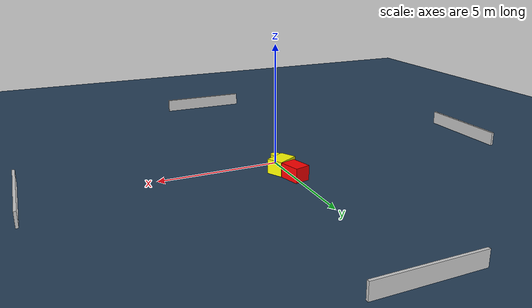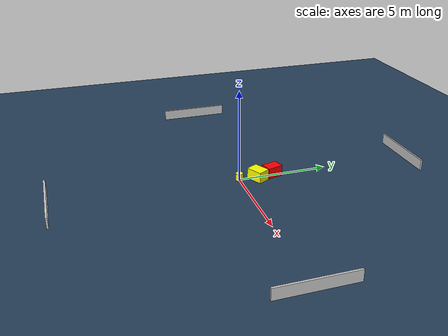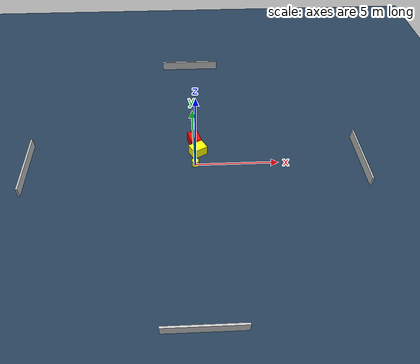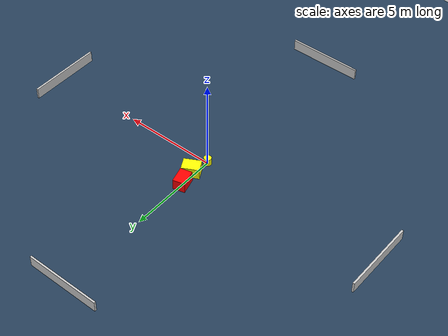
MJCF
<?xml version="1.0" ?>
<mujoco model="generated_environment">
  <option timestep="0.01" integrator="RK4" cone="elliptic"/>
  <default>
    <geom density="1"/>
  </default>
  <asset>
    <texture builtin="gradient" height="3072" name="skybox" rgb1="0.3 0.5 0.7" rgb2="0 0 0" type="skybox" width="512"/>
    <texture builtin="checker" height="300" name="groundplane" rgb1="0.2 0.3 0.4" rgb2="0.1 0.2 0.3" type="2d" width="300"/>
    <material name="groundplane" reflectance="0.2" texrepeat="5 5" texture="groundplane"/>
  </asset>
  <worldbody>
    <light dir="0 0 -1" directional="true" pos="0 0 1.5"/>
    <geom condim="3" friction="0.5 0.005 0.001" material="groundplane" name="floor" pos="0 0 0" size="0 0 0.05" type="plane"/>
    <body name="walls">
      <geom name="wall_1" condim="4" pos="-10.0 0.0 0.3" rgba="0.800000011920929 0.800000011920929 0.800000011920929 1.0" size="0.05 2.0 0.3" type="box"/>
      <geom name="wall_2" condim="4" pos="10.0 0.0 0.3" rgba="0.800000011920929 0.800000011920929 0.800000011920929 1.0" size="0.05 2.0 0.3" type="box"/>
      <geom name="wall_3" condim="4" pos="0.0 -10.0 0.3" rgba="0.800000011920929 0.800000011920929 0.800000011920929 1.0" size="2.0 0.05 0.3" type="box"/>
      <geom name="wall_4" condim="4" pos="0.0 10.0 0.3" rgba="0.800000011920929 0.800000011920929 0.800000011920929 1.0" size="2.0 0.05 0.3" type="box"/>
    </body>
    <body name="robot">
      <joint name="joint_x" type="slide" pos="0 0 0" axis="1 0 0"/>
      <joint name="joint_y" type="slide" pos="0 0 0" axis="0 1 0"/>
      <geom name="robot" type="cylinder" pos="0.0 0.0 0.2" size="0.2 0.2 0.0" mass="5.0" friction="1.0 0.005 0.0001" condim="4" rgba="1.0 1.0 0.0 1.0"/>
    </body>
    <body name="obstacle_1_movable">
      <geom name="obstacle_1_movable" condim="4" pos="0.19466548036246076 1.00111871551938 0.3" euler="0 0 118.35469239546343" friction="0.0 0.005 0.001" rgba="1.0 1.0 0.0 1.0" size="0.34112464890476435 0.465187859660441 0.3" type="box" mass="0.1"/>
      <joint type="free"/>
    </body>
    <body name="obstacle_2_static">
      <geom name="obstacle_2_static" condim="4" pos="0.012094874442651168 1.8851407705042693 0.3" euler="0 0 195.2440214922049" friction="0.0 0.005 0.001" rgba="1.0 0.0 0.0 1.0" size="0.32158203840730726 0.4397296347330346 0.3" type="box"/>
    </body>
  </worldbody>
  <actuator>
    <motor name="actuator_x" joint="joint_x" gear="1" ctrlrange="-1 1"/>
    <motor name="actuator_y" joint="joint_y" gear="1" ctrlrange="-1 1"/>
  </actuator>
</mujoco>
